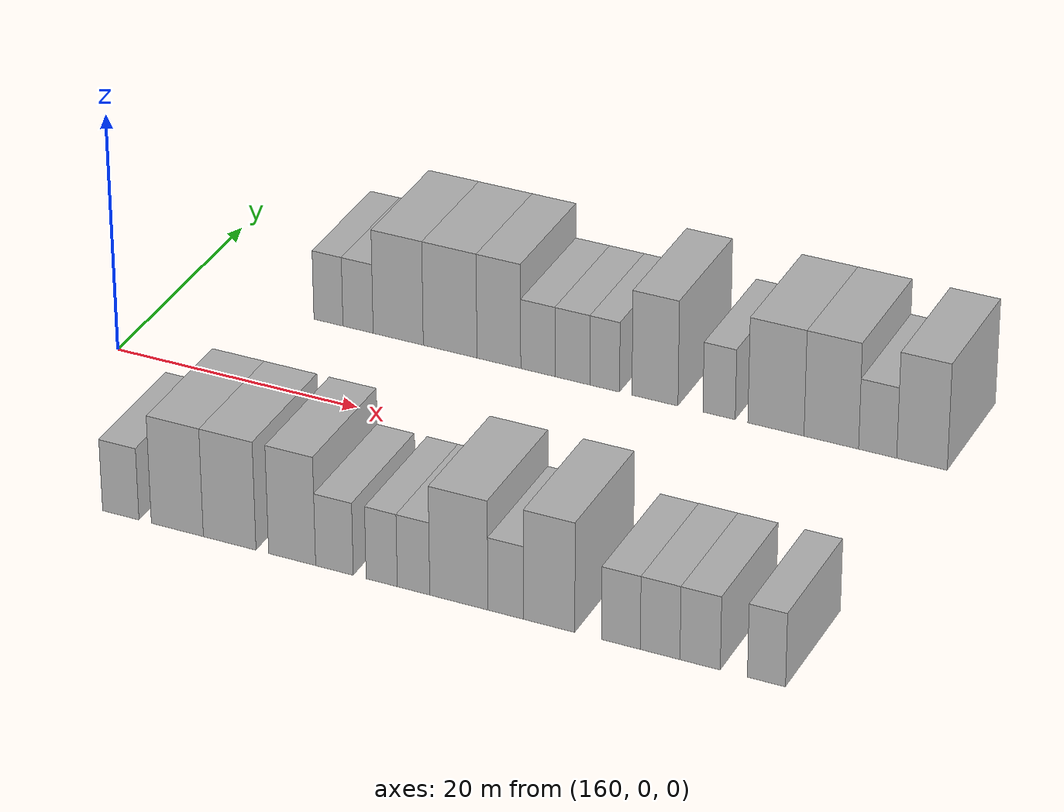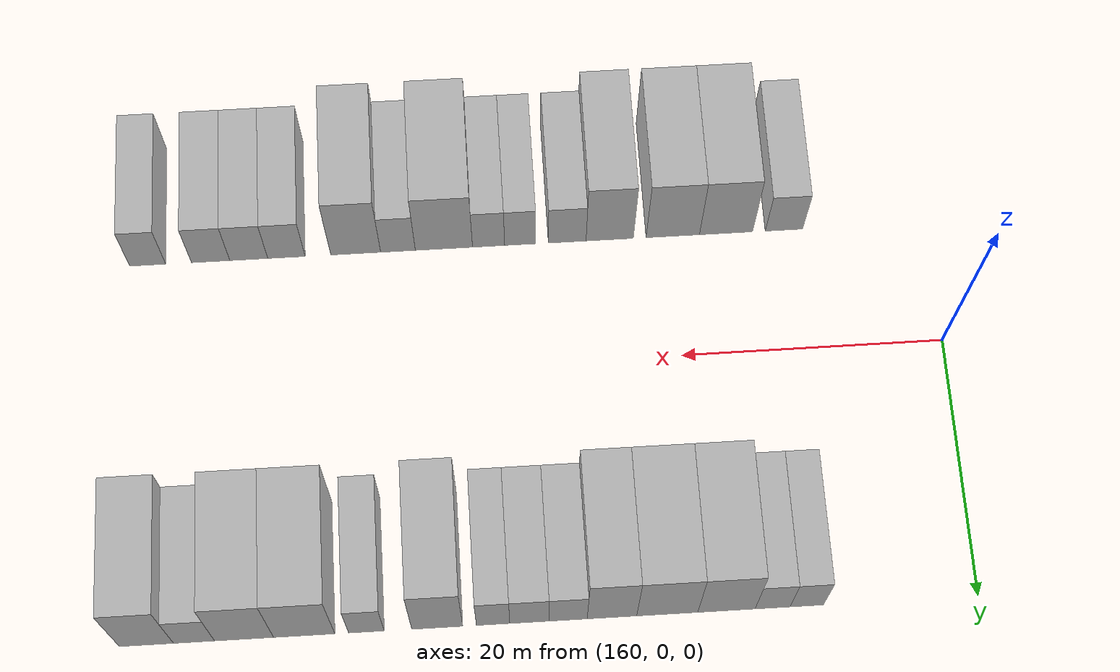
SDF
<sdf version="1.6">
 <world name="default">
  <model name="building_41">
   <static>1</static>
   <pose>172.5984 15.0000 0 0.000000 0.000000 1.570796</pose>
   <link name="link">
    <pose>0 0 3.00 0 0 0</pose>
    <collision name="collision"><geometry><box><size>10.0000 2.4578 6.0000</size></box></geometry></collision>
    <visual name="visual">
     <cast_shadows>0</cast_shadows>
     <geometry><box><size>10.0000 2.4578 6.0000</size></box></geometry>
     <material>
      <script>
       <uri>model://HANNAS_wall/materials/scripts</uri>
       <uri>model://HANNAS_wall/materials/textures</uri>
       <name>vrc/HANNAS_wall</name>
      </script>
     </material>
    </visual>
   </link>
  </model>
  <model name="building_42">
   <static>1</static>
   <pose>175.1026 15.0000 0 0.000000 0.000000 1.570796</pose>
   <link name="link">
    <pose>0 0 3.00 0 0 0</pose>
    <collision name="collision"><geometry><box><size>10.0000 2.5506 6.0000</size></box></geometry></collision>
    <visual name="visual">
     <cast_shadows>0</cast_shadows>
     <geometry><box><size>10.0000 2.5506 6.0000</size></box></geometry>
     <material>
      <script>
       <uri>model://HANNAS_wall/materials/scripts</uri>
       <uri>model://HANNAS_wall/materials/textures</uri>
       <name>vrc/HANNAS_wall</name>
      </script>
     </material>
    </visual>
   </link>
  </model>
  <model name="building_43">
   <static>1</static>
   <pose>178.4787 15.0000 0 0.000000 0.000000 1.570796</pose>
   <link name="link">
    <pose>0 0 4.50 0 0 0</pose>
    <collision name="collision"><geometry><box><size>10.0000 4.2018 9.0000</size></box></geometry></collision>
    <visual name="visual">
     <cast_shadows>0</cast_shadows>
     <geometry><box><size>10.0000 4.2018 9.0000</size></box></geometry>
     <material>
      <script>
       <uri>model://HANNAS_wall/materials/scripts</uri>
       <uri>model://HANNAS_wall/materials/textures</uri>
       <name>vrc/HANNAS_wall</name>
      </script>
     </material>
    </visual>
   </link>
  </model>
  <model name="building_44">
   <static>1</static>
   <pose>182.8127 15.0000 0 0.000000 0.000000 1.570796</pose>
   <link name="link">
    <pose>0 0 4.50 0 0 0</pose>
    <collision name="collision"><geometry><box><size>10.0000 4.4660 9.0000</size></box></geometry></collision>
    <visual name="visual">
     <cast_shadows>0</cast_shadows>
     <geometry><box><size>10.0000 4.4660 9.0000</size></box></geometry>
     <material>
      <script>
       <uri>model://HANNAS_wall/materials/scripts</uri>
       <uri>model://HANNAS_wall/materials/textures</uri>
       <name>vrc/HANNAS_wall</name>
      </script>
     </material>
    </visual>
   </link>
  </model>
  <model name="building_45">
   <static>1</static>
   <pose>186.8530 15.0000 0 0.000000 0.000000 1.570796</pose>
   <link name="link">
    <pose>0 0 4.50 0 0 0</pose>
    <collision name="collision"><geometry><box><size>10.0000 3.6148 9.0000</size></box></geometry></collision>
    <visual name="visual">
     <cast_shadows>0</cast_shadows>
     <geometry><box><size>10.0000 3.6148 9.0000</size></box></geometry>
     <material>
      <script>
       <uri>model://HANNAS_wall/materials/scripts</uri>
       <uri>model://HANNAS_wall/materials/textures</uri>
       <name>vrc/HANNAS_wall</name>
      </script>
     </material>
    </visual>
   </link>
  </model>
  <model name="building_46">
   <static>1</static>
   <pose>190.0587 15.0000 0 0.000000 0.000000 1.570796</pose>
   <link name="link">
    <pose>0 0 3.00 0 0 0</pose>
    <collision name="collision"><geometry><box><size>10.0000 2.7965 6.0000</size></box></geometry></collision>
    <visual name="visual">
     <cast_shadows>0</cast_shadows>
     <geometry><box><size>10.0000 2.7965 6.0000</size></box></geometry>
     <material>
      <script>
       <uri>model://HANNAS_wall/materials/scripts</uri>
       <uri>model://HANNAS_wall/materials/textures</uri>
       <name>vrc/HANNAS_wall</name>
      </script>
     </material>
    </visual>
   </link>
  </model>
  <model name="building_47">
   <static>1</static>
   <pose>192.8791 15.0000 0 0.000000 0.000000 1.570796</pose>
   <link name="link">
    <pose>0 0 3.00 0 0 0</pose>
    <collision name="collision"><geometry><box><size>10.0000 2.8443 6.0000</size></box></geometry></collision>
    <visual name="visual">
     <cast_shadows>0</cast_shadows>
     <geometry><box><size>10.0000 2.8443 6.0000</size></box></geometry>
     <material>
      <script>
       <uri>model://HANNAS_wall/materials/scripts</uri>
       <uri>model://HANNAS_wall/materials/textures</uri>
       <name>vrc/HANNAS_wall</name>
      </script>
     </material>
    </visual>
   </link>
  </model>
  <model name="building_48">
   <static>1</static>
   <pose>195.5133 15.0000 0 0.000000 0.000000 1.570796</pose>
   <link name="link">
    <pose>0 0 3.00 0 0 0</pose>
    <collision name="collision"><geometry><box><size>10.0000 2.4240 6.0000</size></box></geometry></collision>
    <visual name="visual">
     <cast_shadows>0</cast_shadows>
     <geometry><box><size>10.0000 2.4240 6.0000</size></box></geometry>
     <material>
      <script>
       <uri>model://HANNAS_wall/materials/scripts</uri>
       <uri>model://HANNAS_wall/materials/textures</uri>
       <name>vrc/HANNAS_wall</name>
      </script>
     </material>
    </visual>
   </link>
  </model>
  <model name="building_49">
   <static>1</static>
   <pose>199.5779 15.0000 0 0.000000 0.000000 1.570796</pose>
   <link name="link">
    <pose>0 0 4.50 0 0 0</pose>
    <collision name="collision"><geometry><box><size>10.0000 3.7052 9.0000</size></box></geometry></collision>
    <visual name="visual">
     <cast_shadows>0</cast_shadows>
     <geometry><box><size>10.0000 3.7052 9.0000</size></box></geometry>
     <material>
      <script>
       <uri>model://HANNAS_wall/materials/scripts</uri>
       <uri>model://HANNAS_wall/materials/textures</uri>
       <name>vrc/HANNAS_wall</name>
      </script>
     </material>
    </visual>
   </link>
  </model>
  <model name="building_50">
   <static>1</static>
   <pose>204.7219 15.0000 0 0.000000 0.000000 1.570796</pose>
   <link name="link">
    <pose>0 0 3.00 0 0 0</pose>
    <collision name="collision"><geometry><box><size>10.0000 2.5828 6.0000</size></box></geometry></collision>
    <visual name="visual">
     <cast_shadows>0</cast_shadows>
     <geometry><box><size>10.0000 2.5828 6.0000</size></box></geometry>
     <material>
      <script>
       <uri>model://HANNAS_wall/materials/scripts</uri>
       <uri>model://HANNAS_wall/materials/textures</uri>
       <name>vrc/HANNAS_wall</name>
      </script>
     </material>
    </visual>
   </link>
  </model>
  <model name="building_51">
   <static>1</static>
   <pose>209.2341 15.0000 0 0.000000 0.000000 1.570796</pose>
   <link name="link">
    <pose>0 0 4.50 0 0 0</pose>
    <collision name="collision"><geometry><box><size>10.0000 4.4417 9.0000</size></box></geometry></collision>
    <visual name="visual">
     <cast_shadows>0</cast_shadows>
     <geometry><box><size>10.0000 4.4417 9.0000</size></box></geometry>
     <material>
      <script>
       <uri>model://HANNAS_wall/materials/scripts</uri>
       <uri>model://HANNAS_wall/materials/textures</uri>
       <name>vrc/HANNAS_wall</name>
      </script>
     </material>
    </visual>
   </link>
  </model>
  <model name="building_52">
   <static>1</static>
   <pose>213.5964 15.0000 0 0.000000 0.000000 1.570796</pose>
   <link name="link">
    <pose>0 0 4.50 0 0 0</pose>
    <collision name="collision"><geometry><box><size>10.0000 4.2829 9.0000</size></box></geometry></collision>
    <visual name="visual">
     <cast_shadows>0</cast_shadows>
     <geometry><box><size>10.0000 4.2829 9.0000</size></box></geometry>
     <material>
      <script>
       <uri>model://HANNAS_wall/materials/scripts</uri>
       <uri>model://HANNAS_wall/materials/textures</uri>
       <name>vrc/HANNAS_wall</name>
      </script>
     </material>
    </visual>
   </link>
  </model>
  <model name="building_53">
   <static>1</static>
   <pose>217.2213 15.0000 0 0.000000 0.000000 1.570796</pose>
   <link name="link">
    <pose>0 0 3.00 0 0 0</pose>
    <collision name="collision"><geometry><box><size>10.0000 2.9670 6.0000</size></box></geometry></collision>
    <visual name="visual">
     <cast_shadows>0</cast_shadows>
     <geometry><box><size>10.0000 2.9670 6.0000</size></box></geometry>
     <material>
      <script>
       <uri>model://HANNAS_wall/materials/scripts</uri>
       <uri>model://HANNAS_wall/materials/textures</uri>
       <name>vrc/HANNAS_wall</name>
      </script>
     </material>
    </visual>
   </link>
  </model>
  <model name="building_54">
   <static>1</static>
   <pose>220.6630 15.0000 0 0.000000 0.000000 1.570796</pose>
   <link name="link">
    <pose>0 0 4.50 0 0 0</pose>
    <collision name="collision"><geometry><box><size>10.0000 3.9164 9.0000</size></box></geometry></collision>
    <visual name="visual">
     <cast_shadows>0</cast_shadows>
     <geometry><box><size>10.0000 3.9164 9.0000</size></box></geometry>
     <material>
      <script>
       <uri>model://HANNAS_wall/materials/scripts</uri>
       <uri>model://HANNAS_wall/materials/textures</uri>
       <name>vrc/HANNAS_wall</name>
      </script>
     </material>
    </visual>
   </link>
  </model>
  <model name="building_98">
   <static>1</static>
   <pose>171.1292 -15.0000 0 0.000000 0.000000 1.570796</pose>
   <link name="link">
    <pose>0 0 3.00 0 0 0</pose>
    <collision name="collision"><geometry><box><size>10.0000 2.9427 6.0000</size></box></geometry></collision>
    <visual name="visual">
     <cast_shadows>0</cast_shadows>
     <geometry><box><size>10.0000 2.9427 6.0000</size></box></geometry>
     <material>
      <script>
       <uri>model://HANNAS_wall/materials/scripts</uri>
       <uri>model://HANNAS_wall/materials/textures</uri>
       <name>vrc/HANNAS_wall</name>
      </script>
     </material>
    </visual>
   </link>
  </model>
  <model name="building_99">
   <static>1</static>
   <pose>175.6880 -15.0000 0 0.000000 0.000000 1.570796</pose>
   <link name="link">
    <pose>0 0 4.50 0 0 0</pose>
    <collision name="collision"><geometry><box><size>10.0000 4.1748 9.0000</size></box></geometry></collision>
    <visual name="visual">
     <cast_shadows>0</cast_shadows>
     <geometry><box><size>10.0000 4.1748 9.0000</size></box></geometry>
     <material>
      <script>
       <uri>model://HANNAS_wall/materials/scripts</uri>
       <uri>model://HANNAS_wall/materials/textures</uri>
       <name>vrc/HANNAS_wall</name>
      </script>
     </material>
    </visual>
   </link>
  </model>
  <model name="building_100">
   <static>1</static>
   <pose>179.8723 -15.0000 0 0.000000 0.000000 1.570796</pose>
   <link name="link">
    <pose>0 0 4.50 0 0 0</pose>
    <collision name="collision"><geometry><box><size>10.0000 4.1937 9.0000</size></box></geometry></collision>
    <visual name="visual">
     <cast_shadows>0</cast_shadows>
     <geometry><box><size>10.0000 4.1937 9.0000</size></box></geometry>
     <material>
      <script>
       <uri>model://HANNAS_wall/materials/scripts</uri>
       <uri>model://HANNAS_wall/materials/textures</uri>
       <name>vrc/HANNAS_wall</name>
      </script>
     </material>
    </visual>
   </link>
  </model>
  <model name="building_101">
   <static>1</static>
   <pose>184.8235 -15.0000 0 0.000000 0.000000 1.570796</pose>
   <link name="link">
    <pose>0 0 4.50 0 0 0</pose>
    <collision name="collision"><geometry><box><size>10.0000 3.7087 9.0000</size></box></geometry></collision>
    <visual name="visual">
     <cast_shadows>0</cast_shadows>
     <geometry><box><size>10.0000 3.7087 9.0000</size></box></geometry>
     <material>
      <script>
       <uri>model://HANNAS_wall/materials/scripts</uri>
       <uri>model://HANNAS_wall/materials/textures</uri>
       <name>vrc/HANNAS_wall</name>
      </script>
     </material>
    </visual>
   </link>
  </model>
  <model name="building_102">
   <static>1</static>
   <pose>188.1525 -15.0000 0 0.000000 0.000000 1.570796</pose>
   <link name="link">
    <pose>0 0 3.00 0 0 0</pose>
    <collision name="collision"><geometry><box><size>10.0000 2.9494 6.0000</size></box></geometry></collision>
    <visual name="visual">
     <cast_shadows>0</cast_shadows>
     <geometry><box><size>10.0000 2.9494 6.0000</size></box></geometry>
     <material>
      <script>
       <uri>model://HANNAS_wall/materials/scripts</uri>
       <uri>model://HANNAS_wall/materials/textures</uri>
       <name>vrc/HANNAS_wall</name>
      </script>
     </material>
    </visual>
   </link>
  </model>
  <model name="building_103">
   <static>1</static>
   <pose>191.8397 -15.0000 0 0.000000 0.000000 1.570796</pose>
   <link name="link">
    <pose>0 0 3.00 0 0 0</pose>
    <collision name="collision"><geometry><box><size>10.0000 2.4250 6.0000</size></box></geometry></collision>
    <visual name="visual">
     <cast_shadows>0</cast_shadows>
     <geometry><box><size>10.0000 2.4250 6.0000</size></box></geometry>
     <material>
      <script>
       <uri>model://HANNAS_wall/materials/scripts</uri>
       <uri>model://HANNAS_wall/materials/textures</uri>
       <name>vrc/HANNAS_wall</name>
      </script>
     </material>
    </visual>
   </link>
  </model>
  <model name="building_104">
   <static>1</static>
   <pose>194.3083 -15.0000 0 0.000000 0.000000 1.570796</pose>
   <link name="link">
    <pose>0 0 3.00 0 0 0</pose>
    <collision name="collision"><geometry><box><size>10.0000 2.5122 6.0000</size></box></geometry></collision>
    <visual name="visual">
     <cast_shadows>0</cast_shadows>
     <geometry><box><size>10.0000 2.5122 6.0000</size></box></geometry>
     <material>
      <script>
       <uri>model://HANNAS_wall/materials/scripts</uri>
       <uri>model://HANNAS_wall/materials/textures</uri>
       <name>vrc/HANNAS_wall</name>
      </script>
     </material>
    </visual>
   </link>
  </model>
  <model name="building_105">
   <static>1</static>
   <pose>197.7991 -15.0000 0 0.000000 0.000000 1.570796</pose>
   <link name="link">
    <pose>0 0 4.50 0 0 0</pose>
    <collision name="collision"><geometry><box><size>10.0000 4.4694 9.0000</size></box></geometry></collision>
    <visual name="visual">
     <cast_shadows>0</cast_shadows>
     <geometry><box><size>10.0000 4.4694 9.0000</size></box></geometry>
     <material>
      <script>
       <uri>model://HANNAS_wall/materials/scripts</uri>
       <uri>model://HANNAS_wall/materials/textures</uri>
       <name>vrc/HANNAS_wall</name>
      </script>
     </material>
    </visual>
   </link>
  </model>
  <model name="building_106">
   <static>1</static>
   <pose>201.3872 -15.0000 0 0.000000 0.000000 1.570796</pose>
   <link name="link">
    <pose>0 0 3.00 0 0 0</pose>
    <collision name="collision"><geometry><box><size>10.0000 2.7070 6.0000</size></box></geometry></collision>
    <visual name="visual">
     <cast_shadows>0</cast_shadows>
     <geometry><box><size>10.0000 2.7070 6.0000</size></box></geometry>
     <material>
      <script>
       <uri>model://HANNAS_wall/materials/scripts</uri>
       <uri>model://HANNAS_wall/materials/textures</uri>
       <name>vrc/HANNAS_wall</name>
      </script>
     </material>
    </visual>
   </link>
  </model>
  <model name="building_107">
   <static>1</static>
   <pose>204.6859 -15.0000 0 0.000000 0.000000 1.570796</pose>
   <link name="link">
    <pose>0 0 4.50 0 0 0</pose>
    <collision name="collision"><geometry><box><size>10.0000 3.8904 9.0000</size></box></geometry></collision>
    <visual name="visual">
     <cast_shadows>0</cast_shadows>
     <geometry><box><size>10.0000 3.8904 9.0000</size></box></geometry>
     <material>
      <script>
       <uri>model://HANNAS_wall/materials/scripts</uri>
       <uri>model://HANNAS_wall/materials/textures</uri>
       <name>vrc/HANNAS_wall</name>
      </script>
     </material>
    </visual>
   </link>
  </model>
  <model name="building_108">
   <static>1</static>
   <pose>210.0853 -15.0000 0 0.000000 0.000000 1.570796</pose>
   <link name="link">
    <pose>0 0 3.00 0 0 0</pose>
    <collision name="collision"><geometry><box><size>10.0000 2.9086 6.0000</size></box></geometry></collision>
    <visual name="visual">
     <cast_shadows>0</cast_shadows>
     <geometry><box><size>10.0000 2.9086 6.0000</size></box></geometry>
     <material>
      <script>
       <uri>model://HANNAS_wall/materials/scripts</uri>
       <uri>model://HANNAS_wall/materials/textures</uri>
       <name>vrc/HANNAS_wall</name>
      </script>
     </material>
    </visual>
   </link>
  </model>
  <model name="building_109">
   <static>1</static>
   <pose>213.0169 -15.0000 0 0.000000 0.000000 1.570796</pose>
   <link name="link">
    <pose>0 0 3.00 0 0 0</pose>
    <collision name="collision"><geometry><box><size>10.0000 2.9546 6.0000</size></box></geometry></collision>
    <visual name="visual">
     <cast_shadows>0</cast_shadows>
     <geometry><box><size>10.0000 2.9546 6.0000</size></box></geometry>
     <material>
      <script>
       <uri>model://HANNAS_wall/materials/scripts</uri>
       <uri>model://HANNAS_wall/materials/textures</uri>
       <name>vrc/HANNAS_wall</name>
      </script>
     </material>
    </visual>
   </link>
  </model>
  <model name="building_110">
   <static>1</static>
   <pose>215.9859 -15.0000 0 0.000000 0.000000 1.570796</pose>
   <link name="link">
    <pose>0 0 3.00 0 0 0</pose>
    <collision name="collision"><geometry><box><size>10.0000 2.9835 6.0000</size></box></geometry></collision>
    <visual name="visual">
     <cast_shadows>0</cast_shadows>
     <geometry><box><size>10.0000 2.9835 6.0000</size></box></geometry>
     <material>
      <script>
       <uri>model://HANNAS_wall/materials/scripts</uri>
       <uri>model://HANNAS_wall/materials/textures</uri>
       <name>vrc/HANNAS_wall</name>
      </script>
     </material>
    </visual>
   </link>
  </model>
  <model name="building_111">
   <static>1</static>
   <pose>220.8741 -15.0000 0 0.000000 0.000000 1.570796</pose>
   <link name="link">
    <pose>0 0 3.00 0 0 0</pose>
    <collision name="collision"><geometry><box><size>10.0000 2.7928 6.0000</size></box></geometry></collision>
    <visual name="visual">
     <cast_shadows>0</cast_shadows>
     <geometry><box><size>10.0000 2.7928 6.0000</size></box></geometry>
     <material>
      <script>
       <uri>model://HANNAS_wall/materials/scripts</uri>
       <uri>model://HANNAS_wall/materials/textures</uri>
       <name>vrc/HANNAS_wall</name>
      </script>
     </material>
    </visual>
   </link>
  </model>
 </world>
</sdf>
